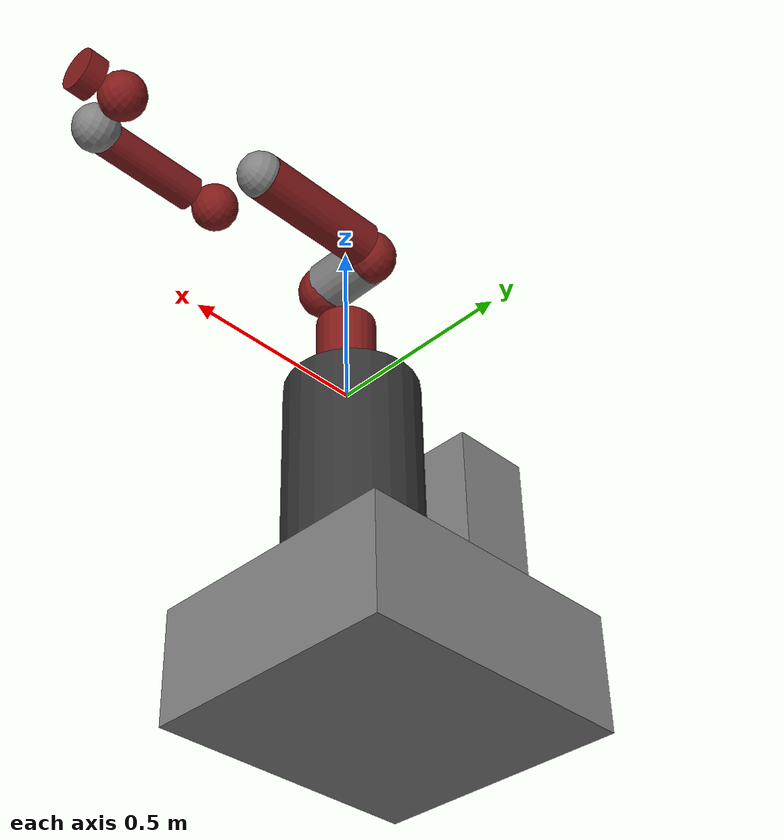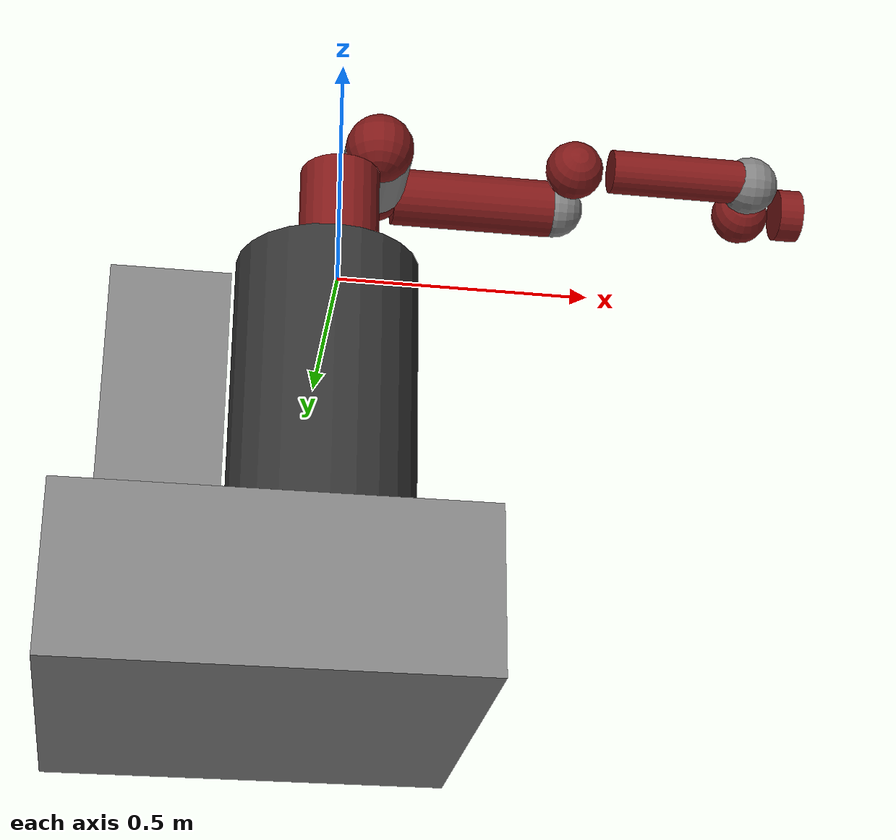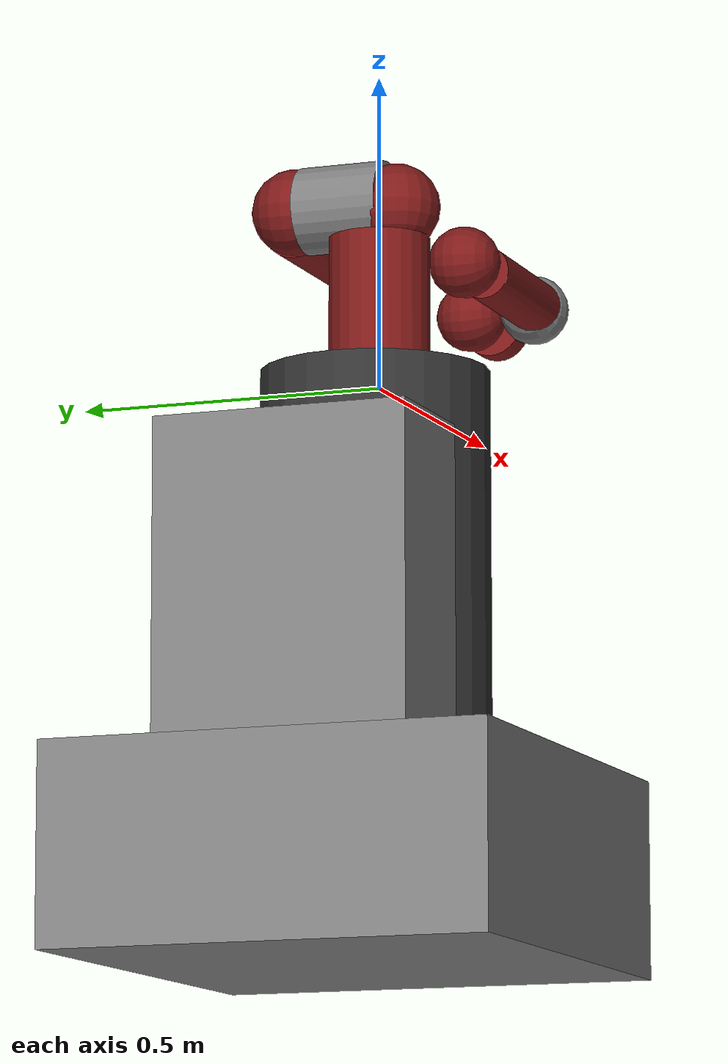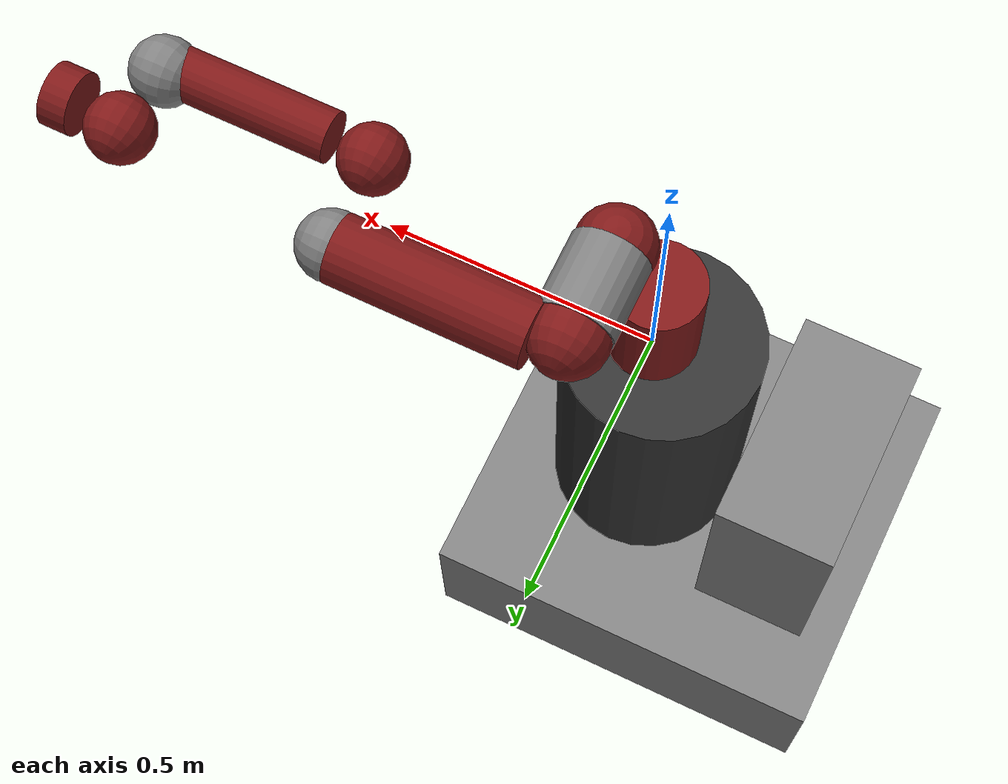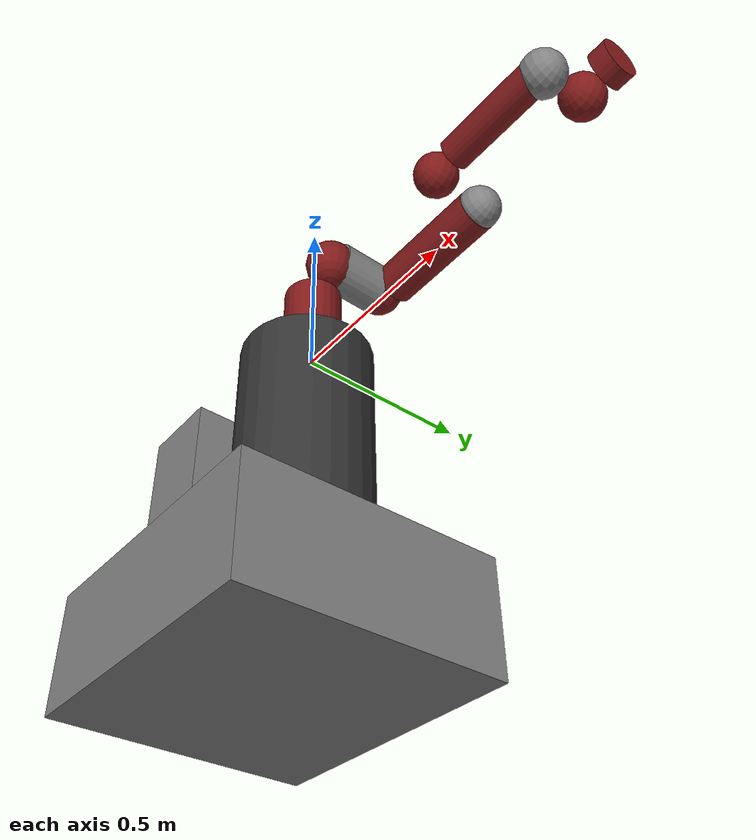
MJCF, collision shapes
<mujoco model="sawyer">
    <actuator>
        <!-- Physical limits of the actuator. We cannot find the right values for Sawyer: copied from Franka Panda -->
        <motor ctrllimited="true" ctrlrange="-80.0 80.0" joint="right_j0" name="torq_right_j0"/>
        <motor ctrllimited="true" ctrlrange="-80.0 80.0" joint="right_j1" name="torq_right_j1"/>
        <motor ctrllimited="true" ctrlrange="-80.0 80.0" joint="right_j2" name="torq_right_j2"/>
        <motor ctrllimited="true" ctrlrange="-80.0 80.0" joint="right_j3" name="torq_right_j3"/>
        <motor ctrllimited="true" ctrlrange="-80.0 80.0" joint="right_j4" name="torq_right_j4"/>
        <motor ctrllimited="true" ctrlrange="-12.0 12.0" joint="right_j5" name="torq_right_j5"/>
        <motor ctrllimited="true" ctrlrange="-12.0 12.0" joint="right_j6" name="torq_right_j6"/>
    </actuator>
    <default>
       <joint damping=".1"/>
    </default>
    <asset>
        <mesh file="meshes/pedestal.stl" name="pedestal"/>
        <mesh file="meshes/base.stl" name="base"/>
        <mesh file="meshes/l0.stl" name="l0"/>
        <mesh file="meshes/head.stl" name="head"/>
        <mesh file="meshes/l1.stl" name="l1"/>
        <mesh file="meshes/l2.stl" name="l2"/>
        <mesh file="meshes/l3.stl" name="l3"/>
        <mesh file="meshes/l4.stl" name="l4"/>
        <mesh file="meshes/l5.stl" name="l5"/>
        <mesh file="meshes/l6.stl" name="l6"/>
    </asset>
    <worldbody>
        <body name="base" pos="0 0 0">
            <inertial diaginertia="0 0 0" mass="0" pos="0 0 0"/>
            <body name="controller_box" pos="0 0 0">
                <inertial diaginertia="1.71363 1.27988 0.809981" mass="46.64" pos="-0.325 0 -0.38"/>
                <geom pos="-0.325 0 -0.38" size="0.11 0.2 0.265" type="box" name="controller_box_col"/>
            </body>
            <body name="pedestal_feet" pos="0 0 0">
                <inertial diaginertia="8.16095 9.59375 15.0785" mass="167.09" pos="-0.1225 0 -0.758"/>
                <geom pos="-0.1225 0 -0.758" size="0.385 0.35 0.155" type="box" name="pedestal_feet_col"/>
            </body>
            <body name="torso" pos="0 0 0">
                <inertial diaginertia="1e-08 1e-08 1e-08" mass="0.0001" pos="0 0 0"/>
                <geom conaffinity="0" contype="0" group="1" rgba="0.2 0.2 0.2 1" size="0.05 0.05 0.05" type="box" name="torso_col"/>
            </body>
            <body name="pedestal" pos="0 0 0">
                <inertial diaginertia="6.0869 5.81635 4.20915" mass="60.864" pos="0 0 0" quat="0.659267 -0.259505 -0.260945 0.655692"/>
                <geom conaffinity="0" contype="0" group="1" mesh="pedestal" pos="0.26 0.345 -0.91488" quat="0.5 0.5 -0.5 -0.5" rgba="0.2 0.2 0.2 1" type="mesh" name="pedestal_col1"/>
                <geom pos="-0.02 0 -0.29" rgba="0.2 0.2 0.2 1" size="0.18 0.31" type="cylinder" name="pedestal_col2"/>
            </body>
            <body name="right_arm_base_link" pos="0 0 0">
                <inertial diaginertia="0.00740351 0.00681776 0.00672942" mass="2.0687" pos="-0.0006241 -2.8025e-05 0.065404" quat="-0.209285 0.674441 0.227335 0.670558"/>
                <geom conaffinity="0" contype="0" group="1" mesh="base" rgba="0.5 0.1 0.1 1" type="mesh" name="right_arm_base_link_col1"/>
                <geom pos="0 0 0.12" rgba="0.5 0.1 0.1 1" size="0.08 0.12" type="cylinder" name="right_arm_base_link_col2"/>
                <body name="right_l0" pos="0 0 0.08">
                    <inertial diaginertia="0.0651588 0.0510944 0.0186218" mass="5.3213" pos="0.024366 0.010969 0.14363" quat="0.894823 0.00899958 -0.170275 0.412573"/>
                    <joint axis="0 0 1" limited="true" name="right_j0" pos="0 0 0" range="-3.0503 3.0503" damping="0.1"/>
                    <geom conaffinity="0" contype="0" group="1" mesh="l0" rgba="0.5 0.1 0.1 1" type="mesh" name="right_l0_col1"/>
                    <geom pos="0.08 0 0.23" rgba="0.5 0.1 0.1 1" size="0.07"  name="right_l0_col2"/>
                    <body name="right_torso_itb" pos="-0.055 0 0.22" quat="0.707107 0 -0.707107 0">
                        <inertial diaginertia="1e-08 1e-08 1e-08" mass="0.0001" pos="0 0 0"/>
                    </body>
                    <body name="right_l1" pos="0.081 0.05 0.237" quat="0.5 -0.5 0.5 0.5">
                        <inertial diaginertia="0.0224339 0.0221624 0.0097097" mass="4.505" pos="-0.0030849 -0.026811 0.092521" quat="0.424888 0.891987 0.132364 -0.0794296"/>
                        <joint axis="0 0 1" limited="true" name="right_j1" pos="0 0 0" range="-3.8095 2.2736"/>
                        <geom conaffinity="0" contype="0" group="1" mesh="l1" rgba="0.5 0.1 0.1 1" type="mesh" name="right_l1_col1"/>
                        <geom pos="0 0 0.1225" rgba="0.5 0.1 0.1 1" size="0.07" name="right_l1_col2"/>
                        <body name="right_l2" pos="0 -0.14 0.1425" quat="0.707107 0.707107 0 0">
                            <inertial diaginertia="0.0257928 0.025506 0.00292515" mass="1.745" pos="-0.00016044 -0.014967 0.13582" quat="0.707831 -0.0524761 0.0516007 0.702537"/>
                            <joint axis="0 0 1" limited="true" name="right_j2" pos="0 0 0" range="-3.0426 3.0426"/>
                            <geom conaffinity="0" contype="0" group="1" mesh="l2" rgba="0.5 0.1 0.1 1" type="mesh" name="right_l2_col1"/>
                            <geom pos="0 0 0.08" rgba="0.5 0.1 0.1 1" size="0.06 0.17" type="cylinder" name="right_l2_col2"/>
                            <body name="right_l3" pos="0 -0.042 0.26" quat="0.707107 -0.707107 0 0">
                                <inertial diaginertia="0.0102404 0.0096997 0.00369622" mass="2.5097" pos="-0.0048135 -0.0281 -0.084154" quat="0.902999 0.385391 -0.0880901 0.168247"/>
                                <joint axis="0 0 1" limited="true" name="right_j3" pos="0 0 0" range="-3.0439 3.0439"/>
                                <geom conaffinity="0" contype="0" group="1" mesh="l3" rgba="0.5 0.1 0.1 1" type="mesh" name="right_l3_col1"/>
                                <geom pos="0 -0.01 -0.12" rgba="0.5 0.1 0.1 1" size="0.06" name="right_l3_col2"/>
                                <body name="right_l4" pos="0 -0.125 -0.1265" quat="0.707107 0.707107 0 0">
                                    <inertial diaginertia="0.0136549 0.0135493 0.00127353" mass="1.1136" pos="-0.0018844 0.0069001 0.1341" quat="0.803612 0.031257 -0.0298334 0.593582"/>
                                    <joint axis="0 0 1" limited="true" name="right_j4" pos="0 0 0" range="-2.9761 2.9761" damping = '0.01'/>
                                    <geom conaffinity="0" contype="0" group="1" mesh="l4" rgba="0.5 0.1 0.1 1" type="mesh" name="right_l4_col1"/>
                                    <geom pos="0 0 0.11" rgba="0.5 0.1 0.1 1" size="0.045 0.15" type="cylinder" name="right_l4_col2"/>
                                    <body name="right_arm_itb" pos="-0.055 0 0.075" quat="0.707107 0 -0.707107 0">
                                        <inertial diaginertia="1e-08 1e-08 1e-08" mass="0.0001" pos="0 0 0"/>
                                    </body>
                                    <body name="right_l5" pos="0 0.031 0.275" quat="0.707107 -0.707107 0 0">
                                        <inertial diaginertia="0.00474131 0.00422857 0.00190672" mass="1.5625" pos="0.0061133 -0.023697 0.076416" quat="0.404076 0.9135 0.0473125 0.00158335"/>
                                        <joint axis="0 0 1" limited="true" name="right_j5" pos="0 0 0" range="-2.9761 2.9761" damping = '0.01' />
                                        <geom conaffinity="0" contype="0" group="1" mesh="l5" rgba="0.5 0.1 0.1 1" type="mesh" name="right_l5_col1"/>
                                        <geom pos="0 0 0.1" rgba="0.5 0.1 0.1 1" size="0.06"  name="right_l5_col2"/>
                                        <body name="right_hand_camera" pos="0.039552 -0.033 0.0695" quat="0.707107 0 0.707107 0">
                                            <inertial diaginertia="0 0 0" mass="0" pos="0.039552 -0.033 0.0695" quat="0.707107 0 0.707107 0"/>
                                        </body>
                                        <body name="right_wrist" pos="0 0 0.10541" quat="0.707107 0.707107 0 0">
                                            <inertial diaginertia="0 0 0" mass="0" pos="0 0 0.10541" quat="0.707107 0.707107 0 0"/>
                                        </body>
                                        <body name="right_l6" pos="0 -0.11 0.1053" quat="0.0616248 0.06163 -0.704416 0.704416">
                                            <inertial diaginertia="0.000360258 0.000311068 0.000214974" mass="0.3292" pos="-8.0726e-06 0.0085838 -0.0049566" quat="0.479044 0.515636 -0.513069 0.491322"/>
                                            <joint axis="0 0 1" limited="true" name="right_j6" pos="0 0 0" range="-4.7124 4.7124" damping = '0.01'/>
                                            <geom conaffinity="0" contype="0" group="1" mesh="l6" rgba="0.5 0.1 0.1 1" type="mesh" name="right_l6_col1"/>
                                            <geom pos="0 0.015 -0.01" rgba="0.5 0.1 0.1 1" size="0.055 0.025" type="cylinder" name="right_l6_col2"/>
                                            <body name="right_hand" pos="0 0 0.0245" quat="0.707105 0 0 0.707108">
                                                <!-- This sites were added for visualization. -->
                                            </body>
                                        </body>
                                    </body>
                                    <body name="right_l4_2" pos="0 0 0">
                                        <inertial diaginertia="1e-08 1e-08 1e-08" mass="1e-08" pos="1e-08 1e-08 1e-08" quat="0.820473 0.339851 -0.17592 0.424708"/>
                                        <geom pos="0 0.01 0.26" size="0.06" name="right_l4_2_col"/>
                                    </body>
                                </body>
                            </body>
                            <body name="right_l2_2" pos="0 0 0">
                                <inertial diaginertia="1e-08 1e-08 1e-08" mass="1e-08" pos="1e-08 1e-08 1e-08" quat="0.820473 0.339851 -0.17592 0.424708"/>
                                <geom pos="0 0 0.26" size="0.06" name="right_l2_2_col"/>
                            </body>
                        </body>
                        <body name="right_l1_2" pos="0 0 0">
                            <inertial diaginertia="1e-08 1e-08 1e-08" mass="1e-08" pos="1e-08 1e-08 1e-08" quat="0.820473 0.339851 -0.17592 0.424708"/>
                            <geom pos="0 0 0.035" size="0.07 0.07" type="cylinder" name="right_l1_2_col"/>
                        </body>
                    </body>
                </body>
            </body>
        </body>
    </worldbody>
</mujoco>
